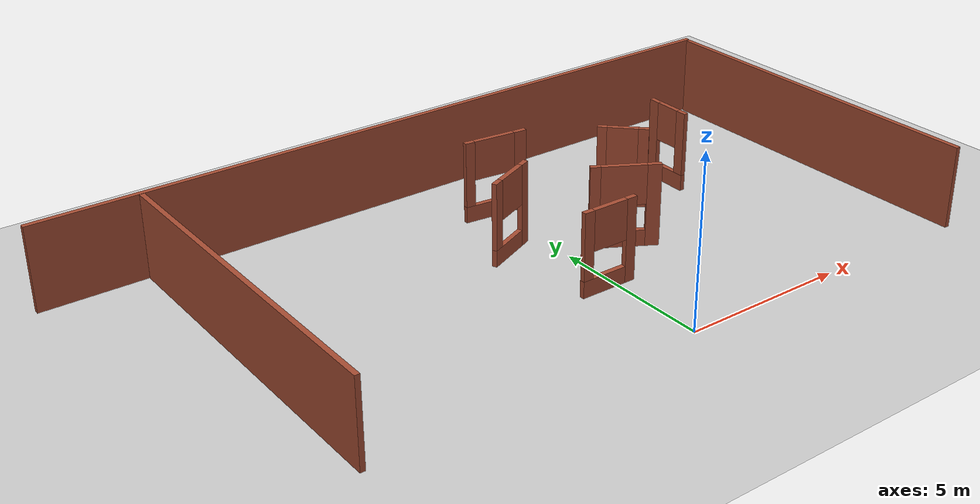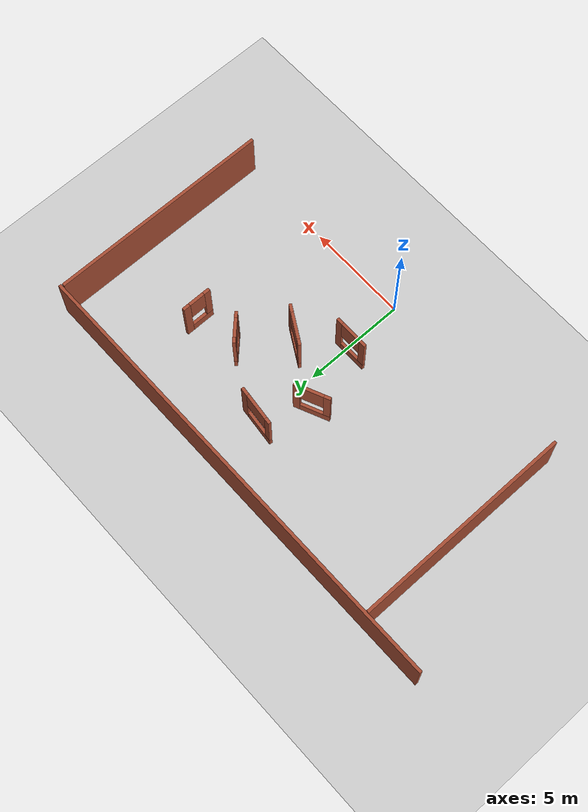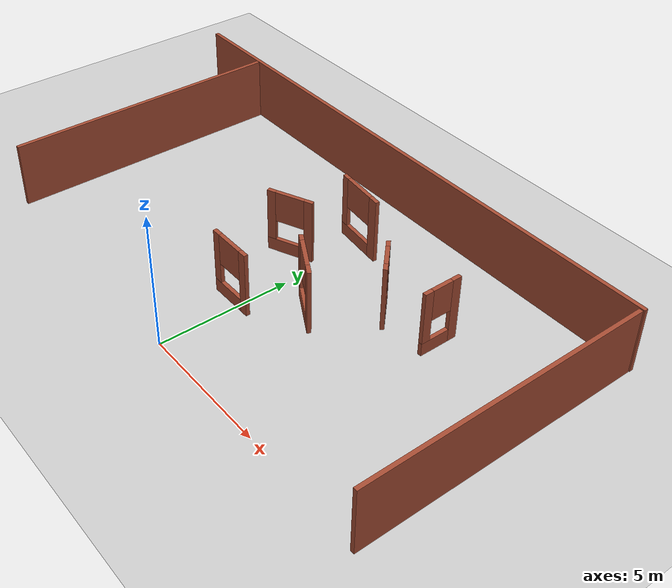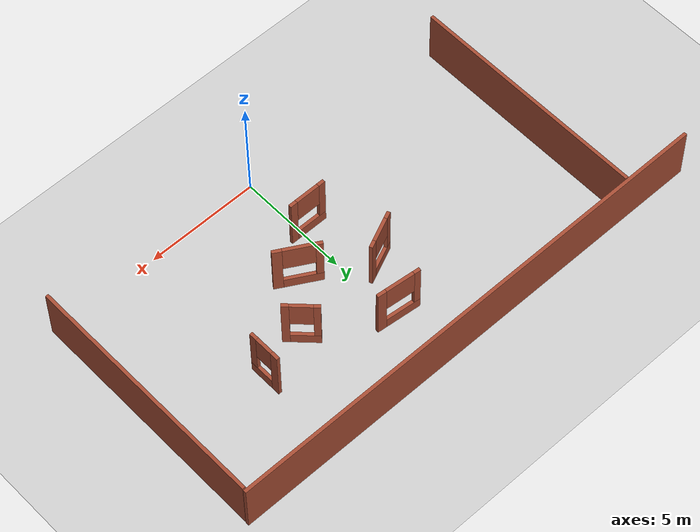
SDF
<sdf version="1.6">
 <world name="default">
  <light name="sun" type="directional">
   <pose>0 0 10 0 -0 0</pose>
   <diffuse>0.8 0.8 0.8 1</diffuse>
   <specular>0.1 0.1 0.1 1</specular>
   <attenuation>
    <range>1000</range>
    <constant>0.9</constant>
    <linear>0.01</linear>
    <quadratic>0.001</quadratic>
   </attenuation>
   <direction>-0.5 0.5 -1</direction>
  </light>
  <model name="ground_plane">
   <static>1</static>
   <link name="link">
    <collision name="collision">
     <geometry><plane><normal>0 0 1</normal><size>100 100</size></plane></geometry>
     <surface><friction><ode><mu>100</mu><mu2>50</mu2></ode></friction></surface>
    </collision>
    <visual name="visual">
     <cast_shadows>0</cast_shadows>
     <geometry><plane><normal>0 0 1</normal><size>100 100</size></plane></geometry>
     <material>
      <script><uri>file://media/materials/scripts/gazebo.material</uri><name>Gazebo/Grey</name></script>
     </material>
    </visual>
   </link>
  </model>
  <gravity>0 0 -9.8</gravity>
  <magnetic_field>6e-06 2.3e-05 -4.2e-05</magnetic_field>
  <atmosphere type="adiabatic"/>
  <physics name="default_physics" default="0" type="ode">
   <max_step_size>0.001</max_step_size>
   <real_time_factor>1</real_time_factor>
   <real_time_update_rate>1000</real_time_update_rate>
  </physics>
  <scene><ambient>0.4 0.4 0.4 1</ambient><background>0.7 0.7 0.7 1</background><shadows>1</shadows></scene>
  <spherical_coordinates>
   <surface_model>EARTH_WGS84</surface_model>
   <latitude_deg>0</latitude_deg>
   <longitude_deg>0</longitude_deg>
   <elevation>0</elevation>
   <heading_deg>0</heading_deg>
  </spherical_coordinates>
  <model name="MundO_Michell2">
   <pose>4.06185 6.87181 0 0 -0 0</pose>
   <link name="Wall_7">
    <pose>-0.811029 -0.27422 0 0 -0 2.35619</pose>
    <visual name="Wall_7_Visual_0">
     <pose>-0.594549 0 1.25 0 -0 0</pose>
     <geometry><box><size>0.310901 0.15 2.5</size></box></geometry>
     <material>
      <script><uri>file://media/materials/scripts/gazebo.material</uri><name>Gazebo/Bricks</name></script>
      <ambient>1 1 1 1</ambient>
     </material>
    </visual>
    <collision name="Wall_7_Collision_0">
     <geometry><box><size>0.310901 0.15 2.5</size></box></geometry>
     <pose>-0.594549 0 1.25 0 -0 0</pose>
    </collision>
    <visual name="Wall_7_Visual_1">
     <pose>0.155451 0 0.25 0 -0 0</pose>
     <geometry><box><size>1.1891 0.15 0.5</size></box></geometry>
     <material>
      <script><uri>file://media/materials/scripts/gazebo.material</uri><name>Gazebo/Bricks</name></script>
      <ambient>1 1 1 1</ambient>
     </material>
    </visual>
    <collision name="Wall_7_Collision_1">
     <geometry><box><size>1.1891 0.15 0.5</size></box></geometry>
     <pose>0.155451 0 0.25 0 -0 0</pose>
    </collision>
    <visual name="Wall_7_Visual_2">
     <pose>0.61156 0 1.5 0 -0 0</pose>
     <geometry><box><size>0.276881 0.15 2</size></box></geometry>
     <material>
      <script><uri>file://media/materials/scripts/gazebo.material</uri><name>Gazebo/Bricks</name></script>
      <ambient>1 1 1 1</ambient>
     </material>
    </visual>
    <collision name="Wall_7_Collision_2">
     <geometry><box><size>0.276881 0.15 2</size></box></geometry>
     <pose>0.61156 0 1.5 0 -0 0</pose>
    </collision>
    <visual name="Wall_7_Visual_3">
     <pose>0.01701 0 1.9 0 -0 0</pose>
     <geometry><box><size>0.912218 0.15 1.2</size></box></geometry>
     <material>
      <script><uri>file://media/materials/scripts/gazebo.material</uri><name>Gazebo/Bricks</name></script>
      <ambient>1 1 1 1</ambient>
     </material>
    </visual>
    <collision name="Wall_7_Collision_3">
     <geometry><box><size>0.912218 0.15 1.2</size></box></geometry>
     <pose>0.01701 0 1.9 0 -0 0</pose>
    </collision>
   </link>
   <link name="Wall_9">
    <pose>1.31939 0.107583 0 0 0 -1.5708</pose>
    <visual name="Wall_9_Visual_0">
     <pose>-0.56865 0 1.25 0 -0 0</pose>
     <geometry><box><size>0.3627 0.15 2.5</size></box></geometry>
     <material>
      <script><uri>file://media/materials/scripts/gazebo.material</uri><name>Gazebo/Bricks</name></script>
      <ambient>1 1 1 1</ambient>
     </material>
    </visual>
    <collision name="Wall_9_Collision_0">
     <geometry><box><size>0.3627 0.15 2.5</size></box></geometry>
     <pose>-0.56865 0 1.25 0 -0 0</pose>
    </collision>
    <visual name="Wall_9_Visual_1">
     <pose>0.18135 0 0.25 0 -0 0</pose>
     <geometry><box><size>1.1373 0.15 0.5</size></box></geometry>
     <material>
      <script><uri>file://media/materials/scripts/gazebo.material</uri><name>Gazebo/Bricks</name></script>
      <ambient>1 1 1 1</ambient>
     </material>
    </visual>
    <collision name="Wall_9_Collision_1">
     <geometry><box><size>1.1373 0.15 0.5</size></box></geometry>
     <pose>0.18135 0 0.25 0 -0 0</pose>
    </collision>
    <visual name="Wall_9_Visual_2">
     <pose>0.58135 0 1.5 0 -0 0</pose>
     <geometry><box><size>0.3373 0.15 2</size></box></geometry>
     <material>
      <script><uri>file://media/materials/scripts/gazebo.material</uri><name>Gazebo/Bricks</name></script>
      <ambient>1 1 1 1</ambient>
     </material>
    </visual>
    <collision name="Wall_9_Collision_2">
     <geometry><box><size>0.3373 0.15 2</size></box></geometry>
     <pose>0.58135 0 1.5 0 -0 0</pose>
    </collision>
    <visual name="Wall_9_Visual_3">
     <pose>0.0127 0 1.9 0 -0 0</pose>
     <geometry><box><size>0.8 0.15 1.2</size></box></geometry>
     <material>
      <script><uri>file://media/materials/scripts/gazebo.material</uri><name>Gazebo/Bricks</name></script>
      <ambient>1 1 1 1</ambient>
     </material>
    </visual>
    <collision name="Wall_9_Collision_3">
     <geometry><box><size>0.8 0.15 1.2</size></box></geometry>
     <pose>0.0127 0 1.9 0 -0 0</pose>
    </collision>
   </link>
   <static>1</static>
  </model>
  <model name="Mundo_Michell">
   <pose>0.672862 4.06184 0 0 -0 0</pose>
   <link name="Wall_0">
    <pose>-0.967502 -1.0232 0 0 -0 3.14159</pose>
    <visual name="Wall_0_Visual_0">
     <pose>-0.710876 0 1.25 0 -0 0</pose>
     <geometry><box><size>0.328249 0.15 2.5</size></box></geometry>
     <material>
      <script><uri>file://media/materials/scripts/gazebo.material</uri><name>Gazebo/Bricks</name></script>
      <ambient>1 1 1 1</ambient>
     </material>
    </visual>
    <collision name="Wall_0_Collision_0">
     <geometry><box><size>0.328249 0.15 2.5</size></box></geometry>
     <pose>-0.710876 0 1.25 0 -0 0</pose>
    </collision>
    <visual name="Wall_0_Visual_1">
     <pose>0.164124 0 0.25 0 -0 0</pose>
     <geometry><box><size>1.42175 0.15 0.5</size></box></geometry>
     <material>
      <script><uri>file://media/materials/scripts/gazebo.material</uri><name>Gazebo/Bricks</name></script>
      <ambient>1 1 1 1</ambient>
     </material>
    </visual>
    <collision name="Wall_0_Collision_1">
     <geometry><box><size>1.42175 0.15 0.5</size></box></geometry>
     <pose>0.164124 0 0.25 0 -0 0</pose>
    </collision>
    <visual name="Wall_0_Visual_2">
     <pose>0.714449 0 1.5 0 -0 0</pose>
     <geometry><box><size>0.321101 0.15 2</size></box></geometry>
     <material>
      <script><uri>file://media/materials/scripts/gazebo.material</uri><name>Gazebo/Bricks</name></script>
      <ambient>1 1 1 1</ambient>
     </material>
    </visual>
    <collision name="Wall_0_Collision_2">
     <geometry><box><size>0.321101 0.15 2</size></box></geometry>
     <pose>0.714449 0 1.5 0 -0 0</pose>
    </collision>
    <visual name="Wall_0_Visual_3">
     <pose>0.003574 0 1.9 0 -0 0</pose>
     <geometry><box><size>1.10065 0.15 1.2</size></box></geometry>
     <material>
      <script><uri>file://media/materials/scripts/gazebo.material</uri><name>Gazebo/Bricks</name></script>
      <ambient>1 1 1 1</ambient>
     </material>
    </visual>
    <collision name="Wall_0_Collision_3">
     <geometry><box><size>1.10065 0.15 1.2</size></box></geometry>
     <pose>0.003574 0 1.9 0 -0 0</pose>
    </collision>
   </link>
   <link name="Wall_5">
    <pose>0.938976 0.533252 0 0 -0 2.61799</pose>
    <visual name="Wall_5_Visual_0">
     <pose>-0.797706 0 1.25 0 -0 0</pose>
     <geometry><box><size>0.404587 0.15 2.5</size></box></geometry>
     <material>
      <script><uri>file://media/materials/scripts/gazebo.material</uri><name>Gazebo/Bricks</name></script>
      <ambient>1 1 1 1</ambient>
     </material>
    </visual>
    <collision name="Wall_5_Collision_0">
     <geometry><box><size>0.404587 0.15 2.5</size></box></geometry>
     <pose>-0.797706 0 1.25 0 -0 0</pose>
    </collision>
    <visual name="Wall_5_Visual_1">
     <pose>0.202294 0 0.25 0 -0 0</pose>
     <geometry><box><size>1.59541 0.15 0.5</size></box></geometry>
     <material>
      <script><uri>file://media/materials/scripts/gazebo.material</uri><name>Gazebo/Bricks</name></script>
      <ambient>1 1 1 1</ambient>
     </material>
    </visual>
    <collision name="Wall_5_Collision_1">
     <geometry><box><size>1.59541 0.15 0.5</size></box></geometry>
     <pose>0.202294 0 0.25 0 -0 0</pose>
    </collision>
    <visual name="Wall_5_Visual_2">
     <pose>0.85167 0 1.5 0 -0 0</pose>
     <geometry><box><size>0.296661 0.15 2</size></box></geometry>
     <material>
      <script><uri>file://media/materials/scripts/gazebo.material</uri><name>Gazebo/Bricks</name></script>
      <ambient>1 1 1 1</ambient>
     </material>
    </visual>
    <collision name="Wall_5_Collision_2">
     <geometry><box><size>0.296661 0.15 2</size></box></geometry>
     <pose>0.85167 0 1.5 0 -0 0</pose>
    </collision>
    <visual name="Wall_5_Visual_3">
     <pose>0.053963 0 1.9 0 -0 0</pose>
     <geometry><box><size>1.29875 0.15 1.2</size></box></geometry>
     <material>
      <script><uri>file://media/materials/scripts/gazebo.material</uri><name>Gazebo/Bricks</name></script>
      <ambient>1 1 1 1</ambient>
     </material>
    </visual>
    <collision name="Wall_5_Collision_3">
     <geometry><box><size>1.29875 0.15 1.2</size></box></geometry>
     <pose>0.053963 0 1.9 0 -0 0</pose>
    </collision>
   </link>
   <static>1</static>
  </model>
  <model name="Mundo_Michell_0">
   <pose>-0.724195 7.46143 0 0 -0 0.417681</pose>
   <link name="Wall_0">
    <pose>-0.967502 -1.0232 0 0 -0 3.14159</pose>
    <visual name="Wall_0_Visual_0">
     <pose>-0.710876 0 1.25 0 -0 0</pose>
     <geometry><box><size>0.328249 0.15 2.5</size></box></geometry>
     <material>
      <script><uri>file://media/materials/scripts/gazebo.material</uri><name>Gazebo/Bricks</name></script>
      <ambient>1 1 1 1</ambient>
     </material>
    </visual>
    <collision name="Wall_0_Collision_0">
     <geometry><box><size>0.328249 0.15 2.5</size></box></geometry>
     <pose>-0.710876 0 1.25 0 -0 0</pose>
    </collision>
    <visual name="Wall_0_Visual_1">
     <pose>0.164124 0 0.25 0 -0 0</pose>
     <geometry><box><size>1.42175 0.15 0.5</size></box></geometry>
     <material>
      <script><uri>file://media/materials/scripts/gazebo.material</uri><name>Gazebo/Bricks</name></script>
      <ambient>1 1 1 1</ambient>
     </material>
    </visual>
    <collision name="Wall_0_Collision_1">
     <geometry><box><size>1.42175 0.15 0.5</size></box></geometry>
     <pose>0.164124 0 0.25 0 -0 0</pose>
    </collision>
    <visual name="Wall_0_Visual_2">
     <pose>0.714449 0 1.5 0 -0 0</pose>
     <geometry><box><size>0.321101 0.15 2</size></box></geometry>
     <material>
      <script><uri>file://media/materials/scripts/gazebo.material</uri><name>Gazebo/Bricks</name></script>
      <ambient>1 1 1 1</ambient>
     </material>
    </visual>
    <collision name="Wall_0_Collision_2">
     <geometry><box><size>0.321101 0.15 2</size></box></geometry>
     <pose>0.714449 0 1.5 0 -0 0</pose>
    </collision>
    <visual name="Wall_0_Visual_3">
     <pose>0.003574 0 1.9 0 -0 0</pose>
     <geometry><box><size>1.10065 0.15 1.2</size></box></geometry>
     <material>
      <script><uri>file://media/materials/scripts/gazebo.material</uri><name>Gazebo/Bricks</name></script>
      <ambient>1 1 1 1</ambient>
     </material>
    </visual>
    <collision name="Wall_0_Collision_3">
     <geometry><box><size>1.10065 0.15 1.2</size></box></geometry>
     <pose>0.003574 0 1.9 0 -0 0</pose>
    </collision>
   </link>
   <link name="Wall_5">
    <pose>0.938976 0.533252 0 0 -0 2.61799</pose>
    <visual name="Wall_5_Visual_0">
     <pose>-0.797706 0 1.25 0 -0 0</pose>
     <geometry><box><size>0.404587 0.15 2.5</size></box></geometry>
     <material>
      <script><uri>file://media/materials/scripts/gazebo.material</uri><name>Gazebo/Bricks</name></script>
      <ambient>1 1 1 1</ambient>
     </material>
    </visual>
    <collision name="Wall_5_Collision_0">
     <geometry><box><size>0.404587 0.15 2.5</size></box></geometry>
     <pose>-0.797706 0 1.25 0 -0 0</pose>
    </collision>
    <visual name="Wall_5_Visual_1">
     <pose>0.202294 0 0.25 0 -0 0</pose>
     <geometry><box><size>1.59541 0.15 0.5</size></box></geometry>
     <material>
      <script><uri>file://media/materials/scripts/gazebo.material</uri><name>Gazebo/Bricks</name></script>
      <ambient>1 1 1 1</ambient>
     </material>
    </visual>
    <collision name="Wall_5_Collision_1">
     <geometry><box><size>1.59541 0.15 0.5</size></box></geometry>
     <pose>0.202294 0 0.25 0 -0 0</pose>
    </collision>
    <visual name="Wall_5_Visual_2">
     <pose>0.85167 0 1.5 0 -0 0</pose>
     <geometry><box><size>0.296661 0.15 2</size></box></geometry>
     <material>
      <script><uri>file://media/materials/scripts/gazebo.material</uri><name>Gazebo/Bricks</name></script>
      <ambient>1 1 1 1</ambient>
     </material>
    </visual>
    <collision name="Wall_5_Collision_2">
     <geometry><box><size>0.296661 0.15 2</size></box></geometry>
     <pose>0.85167 0 1.5 0 -0 0</pose>
    </collision>
    <visual name="Wall_5_Visual_3">
     <pose>0.053963 0 1.9 0 -0 0</pose>
     <geometry><box><size>1.29875 0.15 1.2</size></box></geometry>
     <material>
      <script><uri>file://media/materials/scripts/gazebo.material</uri><name>Gazebo/Bricks</name></script>
      <ambient>1 1 1 1</ambient>
     </material>
    </visual>
    <collision name="Wall_5_Collision_3">
     <geometry><box><size>1.29875 0.15 1.2</size></box></geometry>
     <pose>0.053963 0 1.9 0 -0 0</pose>
    </collision>
   </link>
   <static>1</static>
  </model>
  <model name="Michell_3">
   <pose>-1.48224 5.43669 0 0 -0 0</pose>
   <link name="Wall_15">
    <collision name="Wall_15_Collision">
     <geometry><box><size>11 0.15 2.5</size></box></geometry>
     <pose>0 0 1.25 0 -0 0</pose>
    </collision>
    <visual name="Wall_15_Visual">
     <pose>0 0 1.25 0 -0 0</pose>
     <geometry><box><size>11 0.15 2.5</size></box></geometry>
     <material>
      <script><uri>file://media/materials/scripts/gazebo.material</uri><name>Gazebo/Bricks</name></script>
      <ambient>1 1 1 1</ambient>
     </material>
    </visual>
    <pose>11.2805 -0.098988 0 0 -0 1.5708</pose>
   </link>
   <link name="Wall_17">
    <collision name="Wall_17_Collision">
     <geometry><box><size>22.75 0.15 2.5</size></box></geometry>
     <pose>0 0 1.25 0 -0 0</pose>
    </collision>
    <visual name="Wall_17_Visual">
     <pose>0 0 1.25 0 -0 0</pose>
     <geometry><box><size>22.75 0.15 2.5</size></box></geometry>
     <material>
      <script><uri>file://media/materials/scripts/gazebo.material</uri><name>Gazebo/Bricks</name></script>
      <ambient>1 1 1 1</ambient>
     </material>
    </visual>
    <pose>0 5.52399 0 0 -0 0</pose>
   </link>
   <link name="Wall_19">
    <collision name="Wall_19_Collision">
     <geometry><box><size>10.75 0.15 2.5</size></box></geometry>
     <pose>0 0 1.25 0 -0 0</pose>
    </collision>
    <visual name="Wall_19_Visual">
     <pose>0 0 1.25 0 -0 0</pose>
     <geometry><box><size>10.75 0.15 2.5</size></box></geometry>
     <material>
      <script><uri>file://media/materials/scripts/gazebo.material</uri><name>Gazebo/Bricks</name></script>
      <ambient>1 1 1 1</ambient>
     </material>
    </visual>
    <pose>-8.20614 0.057344 0 0 -0 1.5708</pose>
   </link>
   <static>1</static>
  </model>
 </world>
</sdf>
